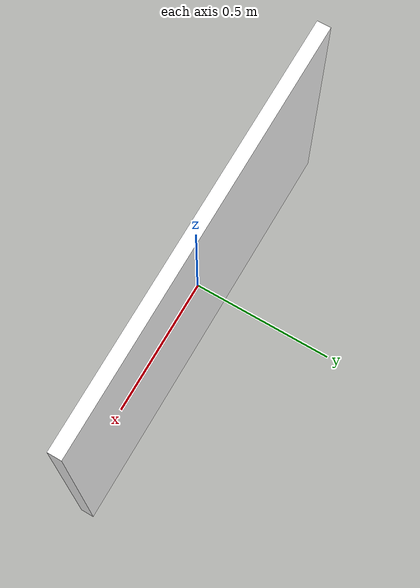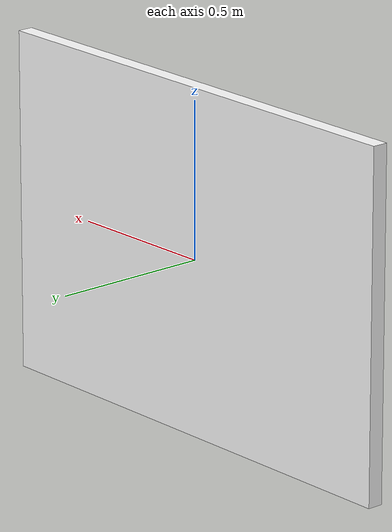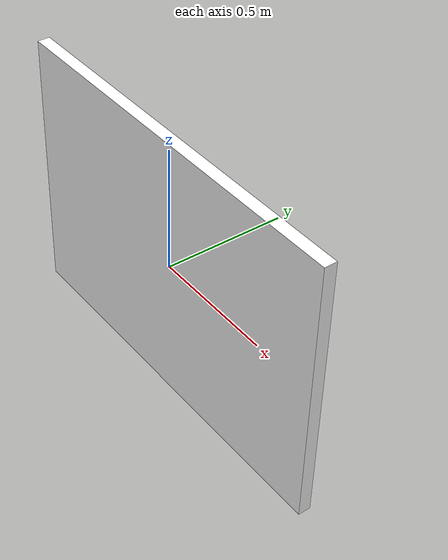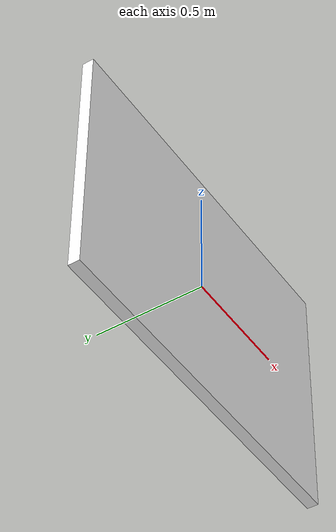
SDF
<?xml version="1.0"?>
<sdf version="1.6">
  <model name="picture_panel_cityscape">
    <static>true</static>
    <link name="link">
      <collision name="collision">
        <geometry>
          <box><size>1.6 0.05 1.1</size></box>
        </geometry>
      </collision>
      <visual name="visual">
        <geometry>
          <box><size>1.6 0.05 1.1</size></box>
        </geometry>
        <material>
          <diffuse>1.0 1.0 1.0</diffuse>
          <specular>0.1 0.1 0.1</specular>
          <pbr>
            <metal>
              <albedo_map>materials/textures/photo.jpg</albedo_map>
              <roughness>0.8</roughness>
            </metal>
          </pbr>
        </material>
      </visual>
    </link>
  </model>
</sdf>
